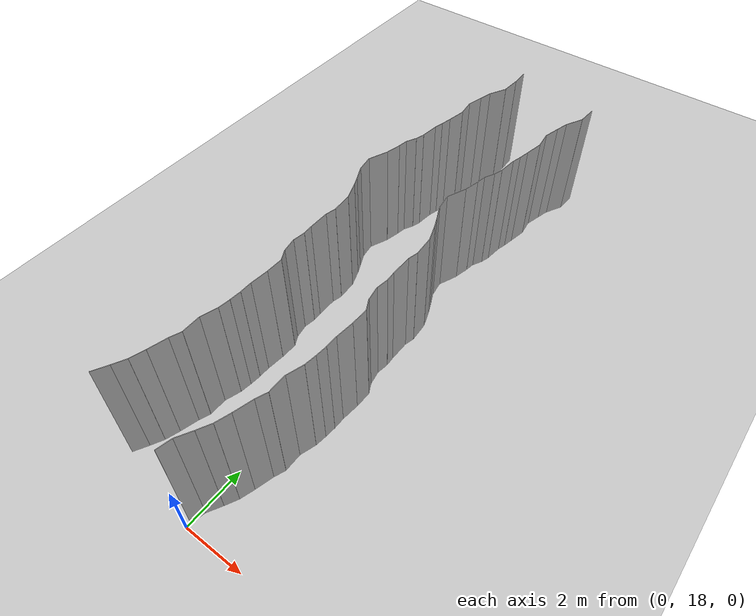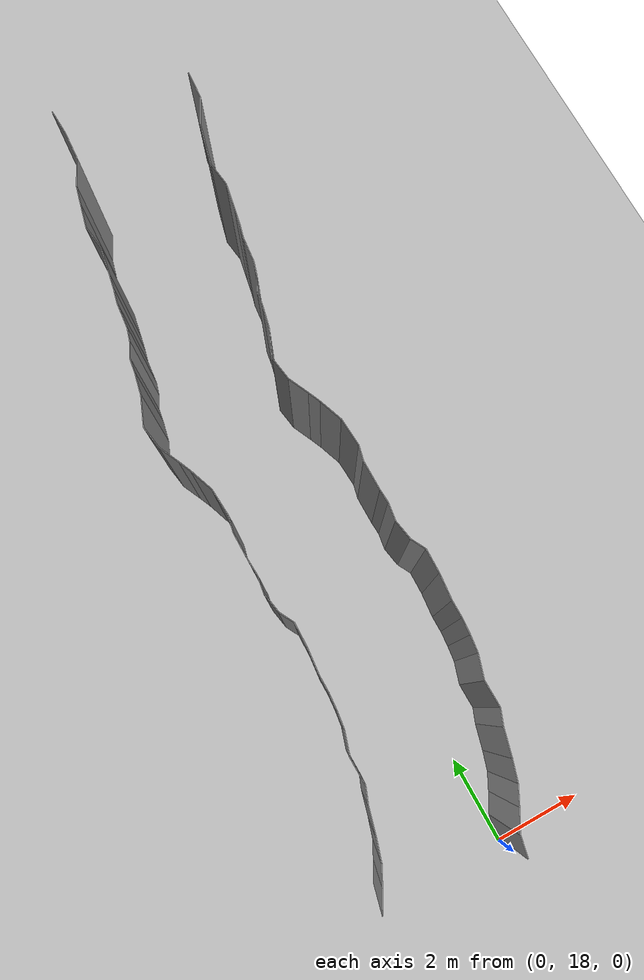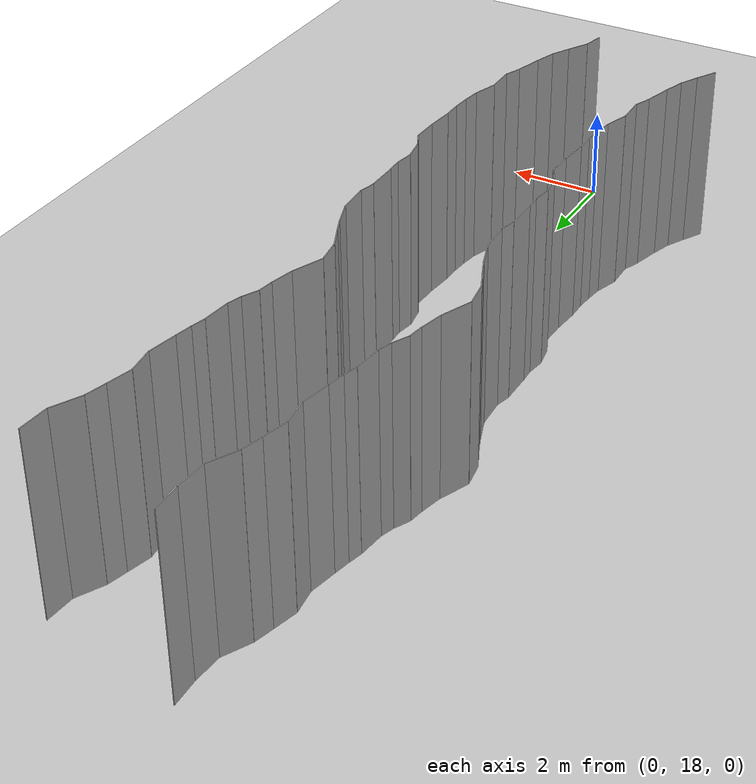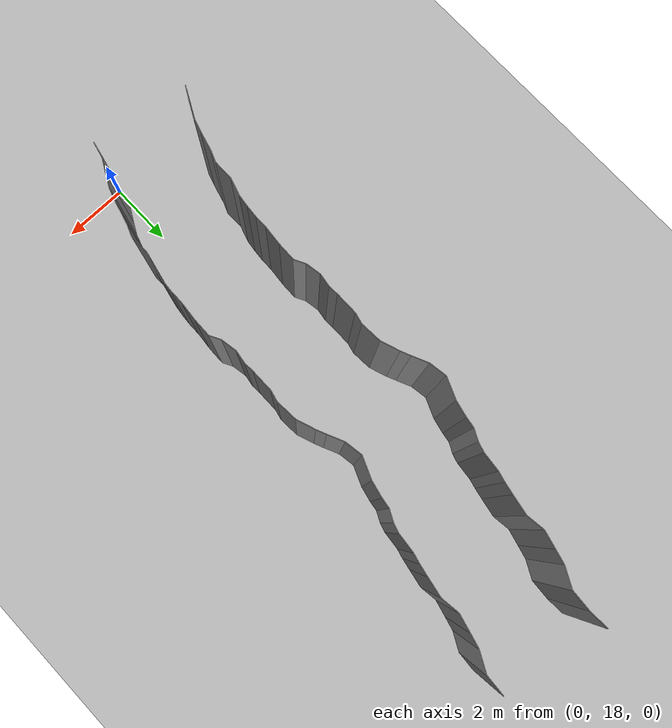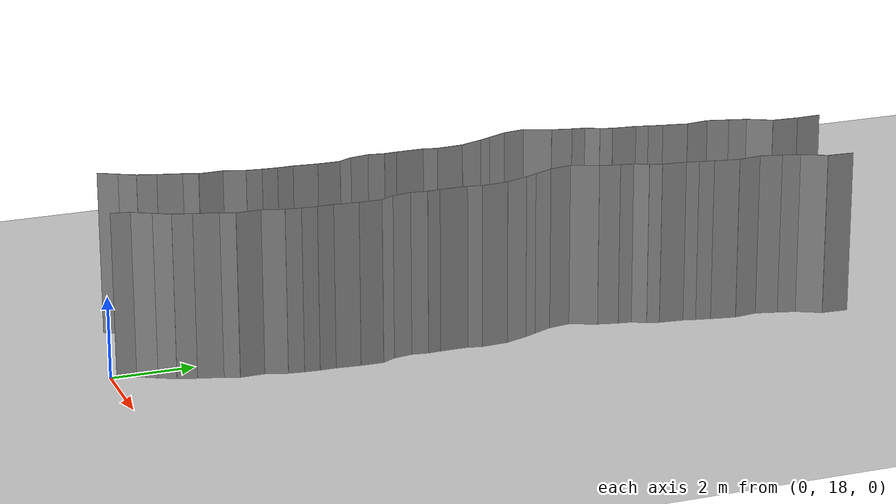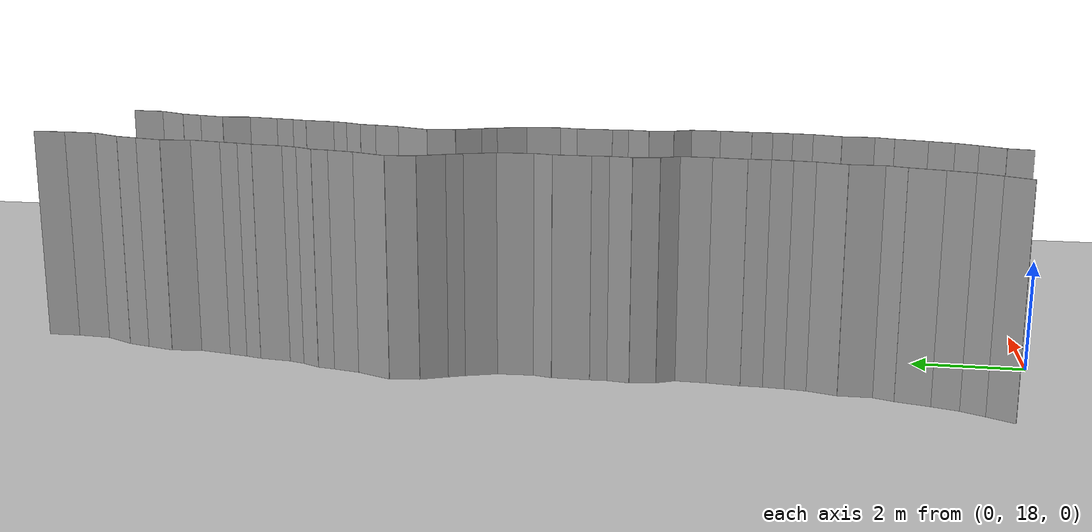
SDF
<sdf version="1.6">
 <world name="default">
  <model name="ground_plane">
   <static>1</static>
   <link name="link">
    <collision name="collision">
     <geometry><plane><normal>0 0 1</normal><size>200 200</size></plane></geometry>
     <surface><friction><ode><mu>100</mu><mu2>50</mu2></ode></friction></surface>
    </collision>
    <visual name="visual">
     <cast_shadows>0</cast_shadows>
     <geometry><plane><normal>0 0 1</normal><size>200 200</size></plane></geometry>
     <material>
      <script><uri>file://media/materials/scripts/gazebo.material</uri><name>Gazebo/Grey</name></script>
     </material>
    </visual>
   </link>
   <pose>0 100 0 0 -0 0</pose>
  </model>
  <model name="wall_73">
   <static>1</static>
   <pose>0.05062578179029176 18.367264299910254 2 0 0 -0.21697428535780522</pose>
   <link name="link">
    <collision name="collision"><geometry><box><size>0.02 0.457722080018 4</size></box></geometry></collision>
    <visual name="visual">
     <material>
      <script><name>Gazebo/Grey</name><uri>file://media/materials/scripts/gazebo.material</uri></script>
     </material>
     <geometry><box><size>0.02 0.457722080018 4</size></box></geometry>
    </visual>
   </link>
  </model>
  <model name="wall_74">
   <static>1</static>
   <pose>-2.7761507131425014 18.811209994044134 2 0 0 -0.5122231350425008</pose>
   <link name="link">
    <collision name="collision"><geometry><box><size>0.02 0.505819782957 4</size></box></geometry></collision>
    <visual name="visual">
     <material>
      <script><name>Gazebo/Grey</name><uri>file://media/materials/scripts/gazebo.material</uri></script>
     </material>
     <geometry><box><size>0.02 0.505819782957 4</size></box></geometry>
    </visual>
   </link>
  </model>
  <model name="wall_75">
   <static>1</static>
   <pose>0.2238492868574986 18.811209994044134 2 0 0 -0.5122231350425008</pose>
   <link name="link">
    <collision name="collision"><geometry><box><size>0.02 0.505819782957 4</size></box></geometry></collision>
    <visual name="visual">
     <material>
      <script><name>Gazebo/Grey</name><uri>file://media/materials/scripts/gazebo.material</uri></script>
     </material>
     <geometry><box><size>0.02 0.505819782957 4</size></box></geometry>
    </visual>
   </link>
  </model>
  <model name="wall_76">
   <static>1</static>
   <pose>-2.5505779902444363 19.226476235001357 2 0 0 -0.4807846990182478</pose>
   <link name="link">
    <collision name="collision"><geometry><box><size>0.02 0.439450600325 4</size></box></geometry></collision>
    <visual name="visual">
     <material>
      <script><name>Gazebo/Grey</name><uri>file://media/materials/scripts/gazebo.material</uri></script>
     </material>
     <geometry><box><size>0.02 0.439450600325 4</size></box></geometry>
    </visual>
   </link>
  </model>
  <model name="wall_77">
   <static>1</static>
   <pose>0.4494220097555637 19.226476235001357 2 0 0 -0.4807846990182478</pose>
   <link name="link">
    <collision name="collision"><geometry><box><size>0.02 0.439450600325 4</size></box></geometry></collision>
    <visual name="visual">
     <material>
      <script><name>Gazebo/Grey</name><uri>file://media/materials/scripts/gazebo.material</uri></script>
     </material>
     <geometry><box><size>0.02 0.439450600325 4</size></box></geometry>
    </visual>
   </link>
  </model>
  <model name="wall_78">
   <static>1</static>
   <pose>-2.3783481457230153 19.646231125166302 2 0 0 -0.3041756428201957</pose>
   <link name="link">
    <collision name="collision"><geometry><box><size>0.02 0.471524402967 4</size></box></geometry></collision>
    <visual name="visual">
     <material>
      <script><name>Gazebo/Grey</name><uri>file://media/materials/scripts/gazebo.material</uri></script>
     </material>
     <geometry><box><size>0.02 0.471524402967 4</size></box></geometry>
    </visual>
   </link>
  </model>
  <model name="wall_79">
   <static>1</static>
   <pose>0.6216518542769847 19.646231125166302 2 0 0 -0.3041756428201957</pose>
   <link name="link">
    <collision name="collision"><geometry><box><size>0.02 0.471524402967 4</size></box></geometry></collision>
    <visual name="visual">
     <material>
      <script><name>Gazebo/Grey</name><uri>file://media/materials/scripts/gazebo.material</uri></script>
     </material>
     <geometry><box><size>0.02 0.471524402967 4</size></box></geometry>
    </visual>
   </link>
  </model>
  <model name="wall_80">
   <static>1</static>
   <pose>-2.2291160718274656 20.16350314075019 2 0 0 -0.26272280154588906</pose>
   <link name="link">
    <collision name="collision"><geometry><box><size>0.02 0.605440164939 4</size></box></geometry></collision>
    <visual name="visual">
     <material>
      <script><name>Gazebo/Grey</name><uri>file://media/materials/scripts/gazebo.material</uri></script>
     </material>
     <geometry><box><size>0.02 0.605440164939 4</size></box></geometry>
    </visual>
   </link>
  </model>
  <model name="wall_81">
   <static>1</static>
   <pose>0.7708839281725344 20.16350314075019 2 0 0 -0.26272280154588906</pose>
   <link name="link">
    <collision name="collision"><geometry><box><size>0.02 0.605440164939 4</size></box></geometry></collision>
    <visual name="visual">
     <material>
      <script><name>Gazebo/Grey</name><uri>file://media/materials/scripts/gazebo.material</uri></script>
     </material>
     <geometry><box><size>0.02 0.605440164939 4</size></box></geometry>
    </visual>
   </link>
  </model>
  <model name="wall_82">
   <static>1</static>
   <pose>-2.082440634498089 20.629005949248484 2 0 0 -0.3744567340809167</pose>
   <link name="link">
    <collision name="collision"><geometry><box><size>0.02 0.372126212787 4</size></box></geometry></collision>
    <visual name="visual">
     <material>
      <script><name>Gazebo/Grey</name><uri>file://media/materials/scripts/gazebo.material</uri></script>
     </material>
     <geometry><box><size>0.02 0.372126212787 4</size></box></geometry>
    </visual>
   </link>
  </model>
  <model name="wall_83">
   <static>1</static>
   <pose>0.9175593655019112 20.629005949248484 2 0 0 -0.3744567340809167</pose>
   <link name="link">
    <collision name="collision"><geometry><box><size>0.02 0.372126212787 4</size></box></geometry></collision>
    <visual name="visual">
     <material>
      <script><name>Gazebo/Grey</name><uri>file://media/materials/scripts/gazebo.material</uri></script>
     </material>
     <geometry><box><size>0.02 0.372126212787 4</size></box></geometry>
    </visual>
   </link>
  </model>
  <model name="wall_84">
   <static>1</static>
   <pose>-2.0176752597661847 21.098141614452583 2 0 0 0.011116926005050782</pose>
   <link name="link">
    <collision name="collision"><geometry><box><size>0.02 0.591967636358 4</size></box></geometry></collision>
    <visual name="visual">
     <material>
      <script><name>Gazebo/Grey</name><uri>file://media/materials/scripts/gazebo.material</uri></script>
     </material>
     <geometry><box><size>0.02 0.591967636358 4</size></box></geometry>
    </visual>
   </link>
  </model>
  <model name="wall_85">
   <static>1</static>
   <pose>0.9823247402338153 21.098141614452583 2 0 0 0.011116926005050782</pose>
   <link name="link">
    <collision name="collision"><geometry><box><size>0.02 0.591967636358 4</size></box></geometry></collision>
    <visual name="visual">
     <material>
      <script><name>Gazebo/Grey</name><uri>file://media/materials/scripts/gazebo.material</uri></script>
     </material>
     <geometry><box><size>0.02 0.591967636358 4</size></box></geometry>
    </visual>
   </link>
  </model>
  <model name="wall_86">
   <static>1</static>
   <pose>-1.9396154200326723 21.652590540609285 2 0 0 -0.304907160960045</pose>
   <link name="link">
    <collision name="collision"><geometry><box><size>0.02 0.541965025394 4</size></box></geometry></collision>
    <visual name="visual">
     <material>
      <script><name>Gazebo/Grey</name><uri>file://media/materials/scripts/gazebo.material</uri></script>
     </material>
     <geometry><box><size>0.02 0.541965025394 4</size></box></geometry>
    </visual>
   </link>
  </model>
  <model name="wall_87">
   <static>1</static>
   <pose>1.0603845799673277 21.652590540609285 2 0 0 -0.304907160960045</pose>
   <link name="link">
    <collision name="collision"><geometry><box><size>0.02 0.541965025394 4</size></box></geometry></collision>
    <visual name="visual">
     <material>
      <script><name>Gazebo/Grey</name><uri>file://media/materials/scripts/gazebo.material</uri></script>
     </material>
     <geometry><box><size>0.02 0.541965025394 4</size></box></geometry>
    </visual>
   </link>
  </model>
  <model name="wall_88">
   <static>1</static>
   <pose>-1.83410110208328 22.098574975837785 2 0 0 -0.12816811984867488</pose>
   <link name="link">
    <collision name="collision"><geometry><box><size>0.02 0.378103391321 4</size></box></geometry></collision>
    <visual name="visual">
     <material>
      <script><name>Gazebo/Grey</name><uri>file://media/materials/scripts/gazebo.material</uri></script>
     </material>
     <geometry><box><size>0.02 0.378103391321 4</size></box></geometry>
    </visual>
   </link>
  </model>
  <model name="wall_89">
   <static>1</static>
   <pose>1.16589889791672 22.098574975837785 2 0 0 -0.12816811984867488</pose>
   <link name="link">
    <collision name="collision"><geometry><box><size>0.02 0.378103391321 4</size></box></geometry></collision>
    <visual name="visual">
     <material>
      <script><name>Gazebo/Grey</name><uri>file://media/materials/scripts/gazebo.material</uri></script>
     </material>
     <geometry><box><size>0.02 0.378103391321 4</size></box></geometry>
    </visual>
   </link>
  </model>
  <model name="wall_90">
   <static>1</static>
   <pose>-1.795759887880669 22.470784785988275 2 0 0 -0.07660359843725567</pose>
   <link name="link">
    <collision name="collision"><geometry><box><size>0.02 0.37050409303 4</size></box></geometry></collision>
    <visual name="visual">
     <material>
      <script><name>Gazebo/Grey</name><uri>file://media/materials/scripts/gazebo.material</uri></script>
     </material>
     <geometry><box><size>0.02 0.37050409303 4</size></box></geometry>
    </visual>
   </link>
  </model>
  <model name="wall_91">
   <static>1</static>
   <pose>1.204240112119331 22.470784785988275 2 0 0 -0.07660359843725567</pose>
   <link name="link">
    <collision name="collision"><geometry><box><size>0.02 0.37050409303 4</size></box></geometry></collision>
    <visual name="visual">
     <material>
      <script><name>Gazebo/Grey</name><uri>file://media/materials/scripts/gazebo.material</uri></script>
     </material>
     <geometry><box><size>0.02 0.37050409303 4</size></box></geometry>
    </visual>
   </link>
  </model>
  <model name="wall_92">
   <static>1</static>
   <pose>-1.7815113187118763 22.848628612615595 2 0 0 -0.00037005580629651197</pose>
   <link name="link">
    <collision name="collision"><geometry><box><size>0.02 0.386270134811 4</size></box></geometry></collision>
    <visual name="visual">
     <material>
      <script><name>Gazebo/Grey</name><uri>file://media/materials/scripts/gazebo.material</uri></script>
     </material>
     <geometry><box><size>0.02 0.386270134811 4</size></box></geometry>
    </visual>
   </link>
  </model>
  <model name="wall_93">
   <static>1</static>
   <pose>1.2184886812881237 22.848628612615595 2 0 0 -0.00037005580629651197</pose>
   <link name="link">
    <collision name="collision"><geometry><box><size>0.02 0.386270134811 4</size></box></geometry></collision>
    <visual name="visual">
     <material>
      <script><name>Gazebo/Grey</name><uri>file://media/materials/scripts/gazebo.material</uri></script>
     </material>
     <geometry><box><size>0.02 0.386270134811 4</size></box></geometry>
    </visual>
   </link>
  </model>
  <model name="wall_94">
   <static>1</static>
   <pose>-1.7532171010977624 23.337597442953033 2 0 0 -0.09511283875294428</pose>
   <link name="link">
    <collision name="collision"><geometry><box><size>0.02 0.594353923366 4</size></box></geometry></collision>
    <visual name="visual">
     <material>
      <script><name>Gazebo/Grey</name><uri>file://media/materials/scripts/gazebo.material</uri></script>
     </material>
     <geometry><box><size>0.02 0.594353923366 4</size></box></geometry>
    </visual>
   </link>
  </model>
  <model name="wall_95">
   <static>1</static>
   <pose>1.2467828989022376 23.337597442953033 2 0 0 -0.09511283875294428</pose>
   <link name="link">
    <collision name="collision"><geometry><box><size>0.02 0.594353923366 4</size></box></geometry></collision>
    <visual name="visual">
     <material>
      <script><name>Gazebo/Grey</name><uri>file://media/materials/scripts/gazebo.material</uri></script>
     </material>
     <geometry><box><size>0.02 0.594353923366 4</size></box></geometry>
    </visual>
   </link>
  </model>
  <model name="wall_96">
   <static>1</static>
   <pose>-1.7189929501177672 23.907369220443762 2 0 0 -0.02190438795790034</pose>
   <link name="link">
    <collision name="collision"><geometry><box><size>0.02 0.54800746501 4</size></box></geometry></collision>
    <visual name="visual">
     <material>
      <script><name>Gazebo/Grey</name><uri>file://media/materials/scripts/gazebo.material</uri></script>
     </material>
     <geometry><box><size>0.02 0.54800746501 4</size></box></geometry>
    </visual>
   </link>
  </model>
  <model name="wall_97">
   <static>1</static>
   <pose>1.2810070498822328 23.907369220443762 2 0 0 -0.02190438795790034</pose>
   <link name="link">
    <collision name="collision"><geometry><box><size>0.02 0.54800746501 4</size></box></geometry></collision>
    <visual name="visual">
     <material>
      <script><name>Gazebo/Grey</name><uri>file://media/materials/scripts/gazebo.material</uri></script>
     </material>
     <geometry><box><size>0.02 0.54800746501 4</size></box></geometry>
    </visual>
   </link>
  </model>
  <model name="wall_98">
   <static>1</static>
   <pose>-1.7977938205892616 24.34291700546946 2 0 0 0.483239066550859</pose>
   <link name="link">
    <collision name="collision"><geometry><box><size>0.02 0.365015878888 4</size></box></geometry></collision>
    <visual name="visual">
     <material>
      <script><name>Gazebo/Grey</name><uri>file://media/materials/scripts/gazebo.material</uri></script>
     </material>
     <geometry><box><size>0.02 0.365015878888 4</size></box></geometry>
    </visual>
   </link>
  </model>
  <model name="wall_99">
   <static>1</static>
   <pose>1.2022061794107384 24.34291700546946 2 0 0 0.483239066550859</pose>
   <link name="link">
    <collision name="collision"><geometry><box><size>0.02 0.365015878888 4</size></box></geometry></collision>
    <visual name="visual">
     <material>
      <script><name>Gazebo/Grey</name><uri>file://media/materials/scripts/gazebo.material</uri></script>
     </material>
     <geometry><box><size>0.02 0.365015878888 4</size></box></geometry>
    </visual>
   </link>
  </model>
  <model name="wall_100">
   <static>1</static>
   <pose>-1.9234073741527973 24.734975159664682 2 0 0 0.17527779226625959</pose>
   <link name="link">
    <collision name="collision"><geometry><box><size>0.02 0.468068422176 4</size></box></geometry></collision>
    <visual name="visual">
     <material>
      <script><name>Gazebo/Grey</name><uri>file://media/materials/scripts/gazebo.material</uri></script>
     </material>
     <geometry><box><size>0.02 0.468068422176 4</size></box></geometry>
    </visual>
   </link>
  </model>
  <model name="wall_101">
   <static>1</static>
   <pose>1.0765926258472027 24.734975159664682 2 0 0 0.17527779226625959</pose>
   <link name="link">
    <collision name="collision"><geometry><box><size>0.02 0.468068422176 4</size></box></geometry></collision>
    <visual name="visual">
     <material>
      <script><name>Gazebo/Grey</name><uri>file://media/materials/scripts/gazebo.material</uri></script>
     </material>
     <geometry><box><size>0.02 0.468068422176 4</size></box></geometry>
    </visual>
   </link>
  </model>
  <model name="wall_102">
   <static>1</static>
   <pose>-1.9343591050069138 25.16420341389036 2 0 0 -0.1490993631842451</pose>
   <link name="link">
    <collision name="collision"><geometry><box><size>0.02 0.402020073062 4</size></box></geometry></collision>
    <visual name="visual">
     <material>
      <script><name>Gazebo/Grey</name><uri>file://media/materials/scripts/gazebo.material</uri></script>
     </material>
     <geometry><box><size>0.02 0.402020073062 4</size></box></geometry>
    </visual>
   </link>
  </model>
  <model name="wall_103">
   <static>1</static>
   <pose>1.0656408949930862 25.16420341389036 2 0 0 -0.1490993631842451</pose>
   <link name="link">
    <collision name="collision"><geometry><box><size>0.02 0.402020073062 4</size></box></geometry></collision>
    <visual name="visual">
     <material>
      <script><name>Gazebo/Grey</name><uri>file://media/materials/scripts/gazebo.material</uri></script>
     </material>
     <geometry><box><size>0.02 0.402020073062 4</size></box></geometry>
    </visual>
   </link>
  </model>
  <model name="wall_104">
   <static>1</static>
   <pose>-1.9126778517838496 25.51588574553522 2 0 0 0.05343609197743198</pose>
   <link name="link">
    <collision name="collision"><geometry><box><size>0.02 0.306242015984 4</size></box></geometry></collision>
    <visual name="visual">
     <material>
      <script><name>Gazebo/Grey</name><uri>file://media/materials/scripts/gazebo.material</uri></script>
     </material>
     <geometry><box><size>0.02 0.306242015984 4</size></box></geometry>
    </visual>
   </link>
  </model>
  <model name="wall_105">
   <static>1</static>
   <pose>1.0873221482161504 25.51588574553522 2 0 0 0.05343609197743198</pose>
   <link name="link">
    <collision name="collision"><geometry><box><size>0.02 0.306242015984 4</size></box></geometry></collision>
    <visual name="visual">
     <material>
      <script><name>Gazebo/Grey</name><uri>file://media/materials/scripts/gazebo.material</uri></script>
     </material>
     <geometry><box><size>0.02 0.306242015984 4</size></box></geometry>
    </visual>
   </link>
  </model>
  <model name="wall_106">
   <static>1</static>
   <pose>-1.9198373547942813 26.008647158010078 2 0 0 -0.0029976812198428807</pose>
   <link name="link">
    <collision name="collision"><geometry><box><size>0.02 0.679720983118 4</size></box></geometry></collision>
    <visual name="visual">
     <material>
      <script><name>Gazebo/Grey</name><uri>file://media/materials/scripts/gazebo.material</uri></script>
     </material>
     <geometry><box><size>0.02 0.679720983118 4</size></box></geometry>
    </visual>
   </link>
  </model>
  <model name="wall_107">
   <static>1</static>
   <pose>1.0801626452057187 26.008647158010078 2 0 0 -0.0029976812198428807</pose>
   <link name="link">
    <collision name="collision"><geometry><box><size>0.02 0.679720983118 4</size></box></geometry></collision>
    <visual name="visual">
     <material>
      <script><name>Gazebo/Grey</name><uri>file://media/materials/scripts/gazebo.material</uri></script>
     </material>
     <geometry><box><size>0.02 0.679720983118 4</size></box></geometry>
    </visual>
   </link>
  </model>
  <model name="wall_108">
   <static>1</static>
   <pose>-1.879038015108589 26.516140028422797 2 0 0 -0.23299624228176485</pose>
   <link name="link">
    <collision name="collision"><geometry><box><size>0.02 0.344578689866 4</size></box></geometry></collision>
    <visual name="visual">
     <material>
      <script><name>Gazebo/Grey</name><uri>file://media/materials/scripts/gazebo.material</uri></script>
     </material>
     <geometry><box><size>0.02 0.344578689866 4</size></box></geometry>
    </visual>
   </link>
  </model>
  <model name="wall_109">
   <static>1</static>
   <pose>1.120961984891411 26.516140028422797 2 0 0 -0.23299624228176485</pose>
   <link name="link">
    <collision name="collision"><geometry><box><size>0.02 0.344578689866 4</size></box></geometry></collision>
    <visual name="visual">
     <material>
      <script><name>Gazebo/Grey</name><uri>file://media/materials/scripts/gazebo.material</uri></script>
     </material>
     <geometry><box><size>0.02 0.344578689866 4</size></box></geometry>
    </visual>
   </link>
  </model>
  <model name="wall_110">
   <static>1</static>
   <pose>-1.859206031250258 27.008203056772192 2 0 0 0.06141088740706271</pose>
   <link name="link">
    <collision name="collision"><geometry><box><size>0.02 0.65008368914 4</size></box></geometry></collision>
    <visual name="visual">
     <material>
      <script><name>Gazebo/Grey</name><uri>file://media/materials/scripts/gazebo.material</uri></script>
     </material>
     <geometry><box><size>0.02 0.65008368914 4</size></box></geometry>
    </visual>
   </link>
  </model>
  <model name="wall_111">
   <static>1</static>
   <pose>1.140793968749742 27.008203056772192 2 0 0 0.06141088740706271</pose>
   <link name="link">
    <collision name="collision"><geometry><box><size>0.02 0.65008368914 4</size></box></geometry></collision>
    <visual name="visual">
     <material>
      <script><name>Gazebo/Grey</name><uri>file://media/materials/scripts/gazebo.material</uri></script>
     </material>
     <geometry><box><size>0.02 0.65008368914 4</size></box></geometry>
    </visual>
   </link>
  </model>
  <model name="wall_112">
   <static>1</static>
   <pose>-1.9767848831805321 27.605406317192713 2 0 0 0.3437096495042529</pose>
   <link name="link">
    <collision name="collision"><geometry><box><size>0.02 0.579439051007 4</size></box></geometry></collision>
    <visual name="visual">
     <material>
      <script><name>Gazebo/Grey</name><uri>file://media/materials/scripts/gazebo.material</uri></script>
     </material>
     <geometry><box><size>0.02 0.579439051007 4</size></box></geometry>
    </visual>
   </link>
  </model>
  <model name="wall_113">
   <static>1</static>
   <pose>1.0232151168194679 27.605406317192713 2 0 0 0.3437096495042529</pose>
   <link name="link">
    <collision name="collision"><geometry><box><size>0.02 0.579439051007 4</size></box></geometry></collision>
    <visual name="visual">
     <material>
      <script><name>Gazebo/Grey</name><uri>file://media/materials/scripts/gazebo.material</uri></script>
     </material>
     <geometry><box><size>0.02 0.579439051007 4</size></box></geometry>
    </visual>
   </link>
  </model>
  <model name="wall_114">
   <static>1</static>
   <pose>-2.1359497640373206 28.019178762279633 2 0 0 0.41150425560921877</pose>
   <link name="link">
    <collision name="collision"><geometry><box><size>0.02 0.307681840476 4</size></box></geometry></collision>
    <visual name="visual">
     <material>
      <script><name>Gazebo/Grey</name><uri>file://media/materials/scripts/gazebo.material</uri></script>
     </material>
     <geometry><box><size>0.02 0.307681840476 4</size></box></geometry>
    </visual>
   </link>
  </model>
  <model name="wall_115">
   <static>1</static>
   <pose>0.8640502359626794 28.019178762279633 2 0 0 0.41150425560921877</pose>
   <link name="link">
    <collision name="collision"><geometry><box><size>0.02 0.307681840476 4</size></box></geometry></collision>
    <visual name="visual">
     <material>
      <script><name>Gazebo/Grey</name><uri>file://media/materials/scripts/gazebo.material</uri></script>
     </material>
     <geometry><box><size>0.02 0.307681840476 4</size></box></geometry>
    </visual>
   </link>
  </model>
  <model name="wall_116">
   <static>1</static>
   <pose>-2.3049134249282655 28.392372645701684 2 0 0 0.43333715506378645</pose>
   <link name="link">
    <collision name="collision"><geometry><box><size>0.02 0.511686584912 4</size></box></geometry></collision>
    <visual name="visual">
     <material>
      <script><name>Gazebo/Grey</name><uri>file://media/materials/scripts/gazebo.material</uri></script>
     </material>
     <geometry><box><size>0.02 0.511686584912 4</size></box></geometry>
    </visual>
   </link>
  </model>
  <model name="wall_117">
   <static>1</static>
   <pose>0.6950865750717345 28.392372645701684 2 0 0 0.43333715506378645</pose>
   <link name="link">
    <collision name="collision"><geometry><box><size>0.02 0.511686584912 4</size></box></geometry></collision>
    <visual name="visual">
     <material>
      <script><name>Gazebo/Grey</name><uri>file://media/materials/scripts/gazebo.material</uri></script>
     </material>
     <geometry><box><size>0.02 0.511686584912 4</size></box></geometry>
    </visual>
   </link>
  </model>
  <model name="wall_118">
   <static>1</static>
   <pose>-2.4533102800037163 28.890715866268277 2 0 0 0.1527300609696912</pose>
   <link name="link">
    <collision name="collision"><geometry><box><size>0.02 0.538564492486 4</size></box></geometry></collision>
    <visual name="visual">
     <material>
      <script><name>Gazebo/Grey</name><uri>file://media/materials/scripts/gazebo.material</uri></script>
     </material>
     <geometry><box><size>0.02 0.538564492486 4</size></box></geometry>
    </visual>
   </link>
  </model>
  <model name="wall_119">
   <static>1</static>
   <pose>0.5466897199962837 28.890715866268277 2 0 0 0.1527300609696912</pose>
   <link name="link">
    <collision name="collision"><geometry><box><size>0.02 0.538564492486 4</size></box></geometry></collision>
    <visual name="visual">
     <material>
      <script><name>Gazebo/Grey</name><uri>file://media/materials/scripts/gazebo.material</uri></script>
     </material>
     <geometry><box><size>0.02 0.538564492486 4</size></box></geometry>
    </visual>
   </link>
  </model>
  <model name="wall_120">
   <static>1</static>
   <pose>-2.362203152074601 29.475121002985908 2 0 0 -0.3933649496698061</pose>
   <link name="link">
    <collision name="collision"><geometry><box><size>0.02 0.689149082994 4</size></box></geometry></collision>
    <visual name="visual">
     <material>
      <script><name>Gazebo/Grey</name><uri>file://media/materials/scripts/gazebo.material</uri></script>
     </material>
     <geometry><box><size>0.02 0.689149082994 4</size></box></geometry>
    </visual>
   </link>
  </model>
  <model name="wall_121">
   <static>1</static>
   <pose>0.637796847925399 29.475121002985908 2 0 0 -0.3933649496698061</pose>
   <link name="link">
    <collision name="collision"><geometry><box><size>0.02 0.689149082994 4</size></box></geometry></collision>
    <visual name="visual">
     <material>
      <script><name>Gazebo/Grey</name><uri>file://media/materials/scripts/gazebo.material</uri></script>
     </material>
     <geometry><box><size>0.02 0.689149082994 4</size></box></geometry>
    </visual>
   </link>
  </model>
  <model name="wall_122">
   <static>1</static>
   <pose>-2.173959405162925 30.037809663346373 2 0 0 -0.22587279174425995</pose>
   <link name="link">
    <collision name="collision"><geometry><box><size>0.02 0.501603562754 4</size></box></geometry></collision>
    <visual name="visual">
     <material>
      <script><name>Gazebo/Grey</name><uri>file://media/materials/scripts/gazebo.material</uri></script>
     </material>
     <geometry><box><size>0.02 0.501603562754 4</size></box></geometry>
    </visual>
   </link>
  </model>
  <model name="wall_123">
   <static>1</static>
   <pose>0.826040594837075 30.037809663346373 2 0 0 -0.22587279174425995</pose>
   <link name="link">
    <collision name="collision"><geometry><box><size>0.02 0.501603562754 4</size></box></geometry></collision>
    <visual name="visual">
     <material>
      <script><name>Gazebo/Grey</name><uri>file://media/materials/scripts/gazebo.material</uri></script>
     </material>
     <geometry><box><size>0.02 0.501603562754 4</size></box></geometry>
    </visual>
   </link>
  </model>
  <model name="wall_124">
   <static>1</static>
   <pose>-2.093195637853864 30.44217721218346 2 0 0 -0.15258420703643136</pose>
   <link name="link">
    <collision name="collision"><geometry><box><size>0.02 0.32363285853 4</size></box></geometry></collision>
    <visual name="visual">
     <material>
      <script><name>Gazebo/Grey</name><uri>file://media/materials/scripts/gazebo.material</uri></script>
     </material>
     <geometry><box><size>0.02 0.32363285853 4</size></box></geometry>
    </visual>
   </link>
  </model>
  <model name="wall_125">
   <static>1</static>
   <pose>0.9068043621461359 30.44217721218346 2 0 0 -0.15258420703643136</pose>
   <link name="link">
    <collision name="collision"><geometry><box><size>0.02 0.32363285853 4</size></box></geometry></collision>
    <visual name="visual">
     <material>
      <script><name>Gazebo/Grey</name><uri>file://media/materials/scripts/gazebo.material</uri></script>
     </material>
     <geometry><box><size>0.02 0.32363285853 4</size></box></geometry>
    </visual>
   </link>
  </model>
  <model name="wall_126">
   <static>1</static>
   <pose>-1.9855878548545571 30.76795084806333 2 0 0 -0.4641020242175939</pose>
   <link name="link">
    <collision name="collision"><geometry><box><size>0.02 0.370907686688 4</size></box></geometry></collision>
    <visual name="visual">
     <material>
      <script><name>Gazebo/Grey</name><uri>file://media/materials/scripts/gazebo.material</uri></script>
     </material>
     <geometry><box><size>0.02 0.370907686688 4</size></box></geometry>
    </visual>
   </link>
  </model>
  <model name="wall_127">
   <static>1</static>
   <pose>1.0144121451454429 30.76795084806333 2 0 0 -0.4641020242175939</pose>
   <link name="link">
    <collision name="collision"><geometry><box><size>0.02 0.370907686688 4</size></box></geometry></collision>
    <visual name="visual">
     <material>
      <script><name>Gazebo/Grey</name><uri>file://media/materials/scripts/gazebo.material</uri></script>
     </material>
     <geometry><box><size>0.02 0.370907686688 4</size></box></geometry>
    </visual>
   </link>
  </model>
  <model name="wall_128">
   <static>1</static>
   <pose>-1.8578158349356249 31.0801238909228 2 0 0 -0.29682990824435385</pose>
   <link name="link">
    <collision name="collision"><geometry><box><size>0.02 0.306055853188 4</size></box></geometry></collision>
    <visual name="visual">
     <material>
      <script><name>Gazebo/Grey</name><uri>file://media/materials/scripts/gazebo.material</uri></script>
     </material>
     <geometry><box><size>0.02 0.306055853188 4</size></box></geometry>
    </visual>
   </link>
  </model>
  <model name="wall_129">
   <static>1</static>
   <pose>1.1421841650643751 31.0801238909228 2 0 0 -0.29682990824435385</pose>
   <link name="link">
    <collision name="collision"><geometry><box><size>0.02 0.306055853188 4</size></box></geometry></collision>
    <visual name="visual">
     <material>
      <script><name>Gazebo/Grey</name><uri>file://media/materials/scripts/gazebo.material</uri></script>
     </material>
     <geometry><box><size>0.02 0.306055853188 4</size></box></geometry>
    </visual>
   </link>
  </model>
  <model name="wall_130">
   <static>1</static>
   <pose>-1.781732276870561 31.522728751072336 2 0 0 -0.10533816413710846</pose>
   <link name="link">
    <collision name="collision"><geometry><box><size>0.02 0.595840852343 4</size></box></geometry></collision>
    <visual name="visual">
     <material>
      <script><name>Gazebo/Grey</name><uri>file://media/materials/scripts/gazebo.material</uri></script>
     </material>
     <geometry><box><size>0.02 0.595840852343 4</size></box></geometry>
    </visual>
   </link>
  </model>
  <model name="wall_131">
   <static>1</static>
   <pose>1.218267723129439 31.522728751072336 2 0 0 -0.10533816413710846</pose>
   <link name="link">
    <collision name="collision"><geometry><box><size>0.02 0.595840852343 4</size></box></geometry></collision>
    <visual name="visual">
     <material>
      <script><name>Gazebo/Grey</name><uri>file://media/materials/scripts/gazebo.material</uri></script>
     </material>
     <geometry><box><size>0.02 0.595840852343 4</size></box></geometry>
    </visual>
   </link>
  </model>
  <model name="wall_132">
   <static>1</static>
   <pose>-1.712124463940998 31.968268109545797 2 0 0 -0.2510592269555656</pose>
   <link name="link">
    <collision name="collision"><geometry><box><size>0.02 0.308202784784 4</size></box></geometry></collision>
    <visual name="visual">
     <material>
      <script><name>Gazebo/Grey</name><uri>file://media/materials/scripts/gazebo.material</uri></script>
     </material>
     <geometry><box><size>0.02 0.308202784784 4</size></box></geometry>
    </visual>
   </link>
  </model>
  <model name="wall_133">
   <static>1</static>
   <pose>1.287875536059002 31.968268109545797 2 0 0 -0.2510592269555656</pose>
   <link name="link">
    <collision name="collision"><geometry><box><size>0.02 0.308202784784 4</size></box></geometry></collision>
    <visual name="visual">
     <material>
      <script><name>Gazebo/Grey</name><uri>file://media/materials/scripts/gazebo.material</uri></script>
     </material>
     <geometry><box><size>0.02 0.308202784784 4</size></box></geometry>
    </visual>
   </link>
  </model>
  <model name="wall_134">
   <static>1</static>
   <pose>-1.6376053622315299 32.29735850711001 2 0 0 -0.1988477225824423</pose>
   <link name="link">
    <collision name="collision"><geometry><box><size>0.02 0.366869440326 4</size></box></geometry></collision>
    <visual name="visual">
     <material>
      <script><name>Gazebo/Grey</name><uri>file://media/materials/scripts/gazebo.material</uri></script>
     </material>
     <geometry><box><size>0.02 0.366869440326 4</size></box></geometry>
    </visual>
   </link>
  </model>
  <model name="wall_135">
   <static>1</static>
   <pose>1.3623946377684701 32.29735850711001 2 0 0 -0.1988477225824423</pose>
   <link name="link">
    <collision name="collision"><geometry><box><size>0.02 0.366869440326 4</size></box></geometry></collision>
    <visual name="visual">
     <material>
      <script><name>Gazebo/Grey</name><uri>file://media/materials/scripts/gazebo.material</uri></script>
     </material>
     <geometry><box><size>0.02 0.366869440326 4</size></box></geometry>
    </visual>
   </link>
  </model>
  <model name="wall_136">
   <static>1</static>
   <pose>-1.543813095521455 32.78138976199118 2 0 0 -0.1869892114491695</pose>
   <link name="link">
    <collision name="collision"><geometry><box><size>0.02 0.619216217942 4</size></box></geometry></collision>
    <visual name="visual">
     <material>
      <script><name>Gazebo/Grey</name><uri>file://media/materials/scripts/gazebo.material</uri></script>
     </material>
     <geometry><box><size>0.02 0.619216217942 4</size></box></geometry>
    </visual>
   </link>
  </model>
  <model name="wall_137">
   <static>1</static>
   <pose>1.456186904478545 32.78138976199118 2 0 0 -0.1869892114491695</pose>
   <link name="link">
    <collision name="collision"><geometry><box><size>0.02 0.619216217942 4</size></box></geometry></collision>
    <visual name="visual">
     <material>
      <script><name>Gazebo/Grey</name><uri>file://media/materials/scripts/gazebo.material</uri></script>
     </material>
     <geometry><box><size>0.02 0.619216217942 4</size></box></geometry>
    </visual>
   </link>
  </model>
  <model name="wall_138">
   <static>1</static>
   <pose>-1.5222806052278197 33.366425557415994 2 0 0 0.12758292262920806</pose>
   <link name="link">
    <collision name="collision"><geometry><box><size>0.02 0.566251608511 4</size></box></geometry></collision>
    <visual name="visual">
     <material>
      <script><name>Gazebo/Grey</name><uri>file://media/materials/scripts/gazebo.material</uri></script>
     </material>
     <geometry><box><size>0.02 0.566251608511 4</size></box></geometry>
    </visual>
   </link>
  </model>
  <model name="wall_139">
   <static>1</static>
   <pose>1.4777193947721803 33.366425557415994 2 0 0 0.12758292262920806</pose>
   <link name="link">
    <collision name="collision"><geometry><box><size>0.02 0.566251608511 4</size></box></geometry></collision>
    <visual name="visual">
     <material>
      <script><name>Gazebo/Grey</name><uri>file://media/materials/scripts/gazebo.material</uri></script>
     </material>
     <geometry><box><size>0.02 0.566251608511 4</size></box></geometry>
    </visual>
   </link>
  </model>
  <model name="wall_140">
   <static>1</static>
   <pose>-1.4915854589344009 33.909987284518785 2 0 0 -0.24868271494993163</pose>
   <link name="link">
    <collision name="collision"><geometry><box><size>0.02 0.542152114288 4</size></box></geometry></collision>
    <visual name="visual">
     <material>
      <script><name>Gazebo/Grey</name><uri>file://media/materials/scripts/gazebo.material</uri></script>
     </material>
     <geometry><box><size>0.02 0.542152114288 4</size></box></geometry>
    </visual>
   </link>
  </model>
  <model name="wall_141">
   <static>1</static>
   <pose>1.5084145410655991 33.909987284518785 2 0 0 -0.24868271494993163</pose>
   <link name="link">
    <collision name="collision"><geometry><box><size>0.02 0.542152114288 4</size></box></geometry></collision>
    <visual name="visual">
     <material>
      <script><name>Gazebo/Grey</name><uri>file://media/materials/scripts/gazebo.material</uri></script>
     </material>
     <geometry><box><size>0.02 0.542152114288 4</size></box></geometry>
    </visual>
   </link>
  </model>
  <model name="wall_142">
   <static>1</static>
   <pose>-1.3690752194237927 34.38693802410885 2 0 0 -0.2547853324365007</pose>
   <link name="link">
    <collision name="collision"><geometry><box><size>0.02 0.442719453965 4</size></box></geometry></collision>
    <visual name="visual">
     <material>
      <script><name>Gazebo/Grey</name><uri>file://media/materials/scripts/gazebo.material</uri></script>
     </material>
     <geometry><box><size>0.02 0.442719453965 4</size></box></geometry>
    </visual>
   </link>
  </model>
  <model name="wall_143">
   <static>1</static>
   <pose>1.6309247805762073 34.38693802410885 2 0 0 -0.2547853324365007</pose>
   <link name="link">
    <collision name="collision"><geometry><box><size>0.02 0.442719453965 4</size></box></geometry></collision>
    <visual name="visual">
     <material>
      <script><name>Gazebo/Grey</name><uri>file://media/materials/scripts/gazebo.material</uri></script>
     </material>
     <geometry><box><size>0.02 0.442719453965 4</size></box></geometry>
    </visual>
   </link>
  </model>
  <model name="wall_144">
   <static>1</static>
   <pose>-1.16312639737074 34.88888084309372 2 0 0 -0.48099182725190404</pose>
   <link name="link">
    <collision name="collision"><geometry><box><size>0.02 0.64910843631 4</size></box></geometry></collision>
    <visual name="visual">
     <material>
      <script><name>Gazebo/Grey</name><uri>file://media/materials/scripts/gazebo.material</uri></script>
     </material>
     <geometry><box><size>0.02 0.64910843631 4</size></box></geometry>
    </visual>
   </link>
  </model>
  <model name="wall_145">
   <static>1</static>
   <pose>1.83687360262926 34.88888084309372 2 0 0 -0.48099182725190404</pose>
   <link name="link">
    <collision name="collision"><geometry><box><size>0.02 0.64910843631 4</size></box></geometry></collision>
    <visual name="visual">
     <material>
      <script><name>Gazebo/Grey</name><uri>file://media/materials/scripts/gazebo.material</uri></script>
     </material>
     <geometry><box><size>0.02 0.64910843631 4</size></box></geometry>
    </visual>
   </link>
  </model>
  <model name="wall_146">
   <static>1</static>
   <pose>-0.990810433266996 35.49869214794362 2 0 0 -0.06868829722581077</pose>
   <link name="link">
    <collision name="collision"><geometry><box><size>0.02 0.64568690367 4</size></box></geometry></collision>
    <visual name="visual">
     <material>
      <script><name>Gazebo/Grey</name><uri>file://media/materials/scripts/gazebo.material</uri></script>
     </material>
     <geometry><box><size>0.02 0.64568690367 4</size></box></geometry>
    </visual>
   </link>
  </model>
  <model name="wall_147">
   <static>1</static>
   <pose>2.0091895667330038 35.49869214794362 2 0 0 -0.06868829722581077</pose>
   <link name="link">
    <collision name="collision"><geometry><box><size>0.02 0.64568690367 4</size></box></geometry></collision>
    <visual name="visual">
     <material>
      <script><name>Gazebo/Grey</name><uri>file://media/materials/scripts/gazebo.material</uri></script>
     </material>
     <geometry><box><size>0.02 0.64568690367 4</size></box></geometry>
    </visual>
   </link>
  </model>
  <model name="wall_148">
   <static>1</static>
   <pose>-0.9807566406423962 36.12661065097995 2 0 0 0.039557189646517325</pose>
   <link name="link">
    <collision name="collision"><geometry><box><size>0.02 0.612151581699 4</size></box></geometry></collision>
    <visual name="visual">
     <material>
      <script><name>Gazebo/Grey</name><uri>file://media/materials/scripts/gazebo.material</uri></script>
     </material>
     <geometry><box><size>0.02 0.612151581699 4</size></box></geometry>
    </visual>
   </link>
  </model>
 </world>
</sdf>
